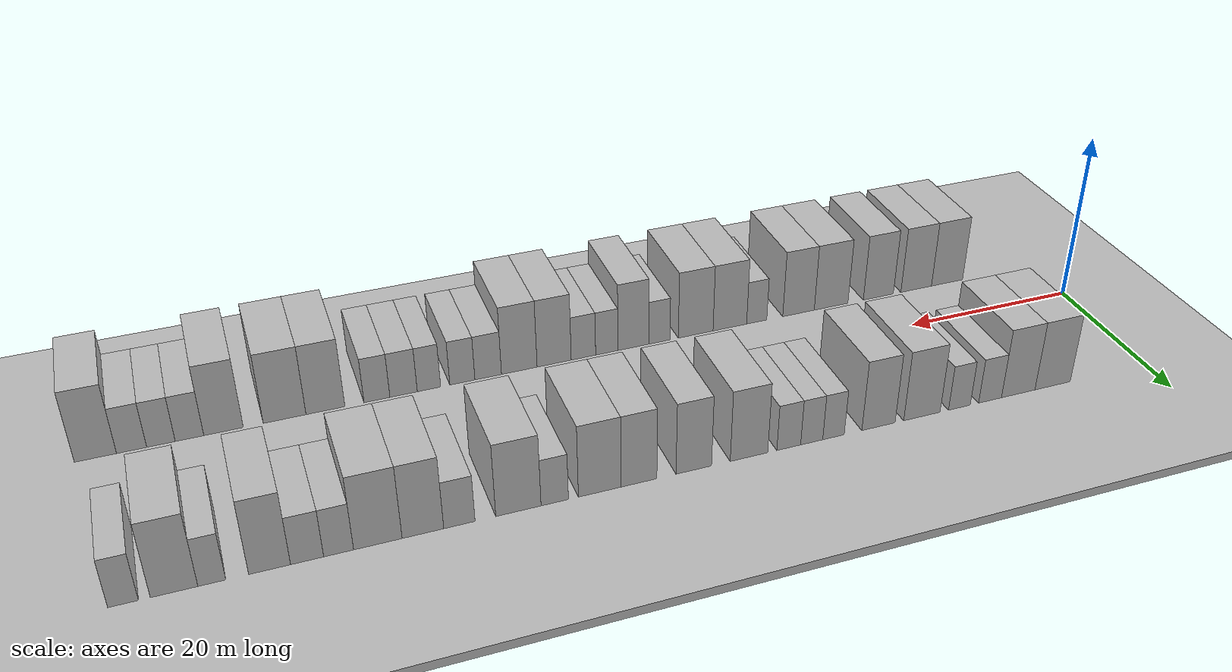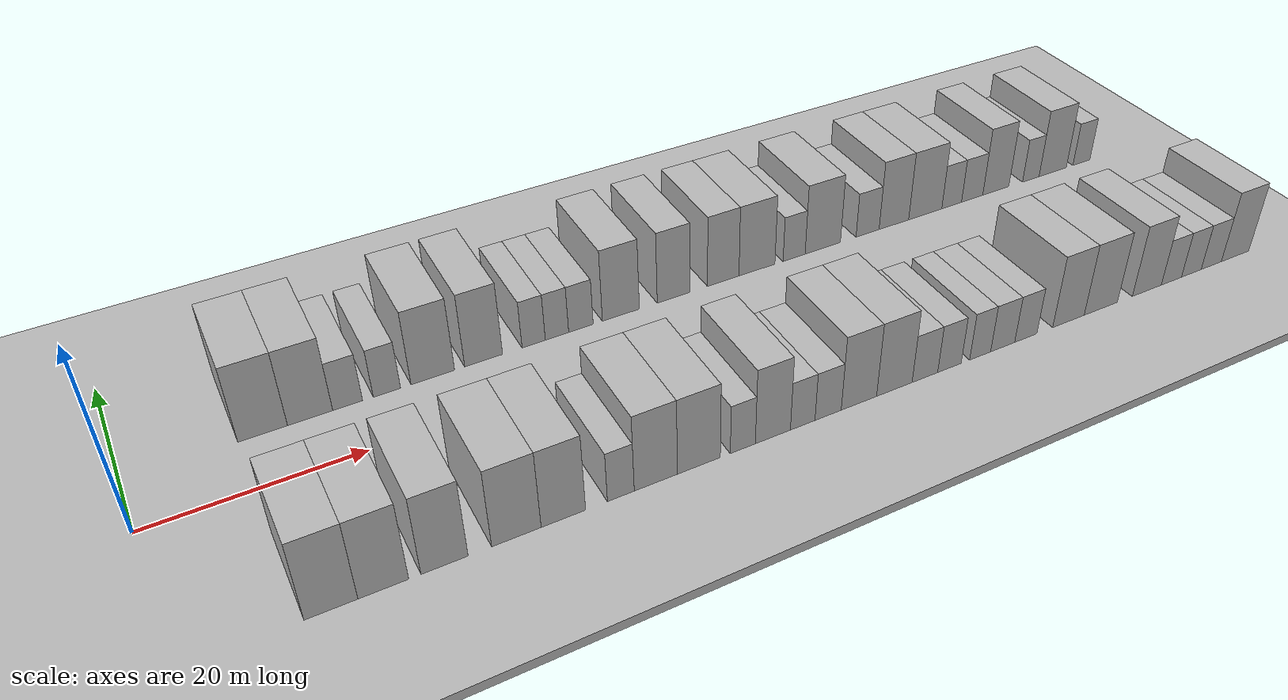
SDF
<sdf version="1.6">
 <world name="default">
  <include><name>ground_plane_1</name><uri>model://HANNAS_ground_plane</uri></include>
  <include>
   <name>ground_plane_2</name>
   <uri>model://HANNAS_ground_plane</uri>
   <pose>100 0 0  0 0 0</pose>
  </include>
  <model name="building_1">
   <static>1</static>
   <pose>12.1950 11.0000 0 0.000000 0.000000 1.570796</pose>
   <link name="link">
    <pose>0 0 4.50 0 0 0</pose>
    <collision name="collision"><geometry><box><size>10.0000 4.3899 9.0000</size></box></geometry></collision>
    <visual name="visual">
     <cast_shadows>0</cast_shadows>
     <geometry><box><size>10.0000 4.3899 9.0000</size></box></geometry>
     <material>
      <script>
       <uri>model://HANNAS_wall/materials/scripts</uri>
       <uri>model://HANNAS_wall/materials/textures</uri>
       <name>vrc/HANNAS_wall</name>
      </script>
     </material>
    </visual>
   </link>
  </model>
  <model name="building_2">
   <static>1</static>
   <pose>16.4373 11.0000 0 0.000000 0.000000 1.570796</pose>
   <link name="link">
    <pose>0 0 4.50 0 0 0</pose>
    <collision name="collision"><geometry><box><size>10.0000 4.0949 9.0000</size></box></geometry></collision>
    <visual name="visual">
     <cast_shadows>0</cast_shadows>
     <geometry><box><size>10.0000 4.0949 9.0000</size></box></geometry>
     <material>
      <script>
       <uri>model://HANNAS_wall/materials/scripts</uri>
       <uri>model://HANNAS_wall/materials/textures</uri>
       <name>vrc/HANNAS_wall</name>
      </script>
     </material>
    </visual>
   </link>
  </model>
  <model name="building_3">
   <static>1</static>
   <pose>19.8661 11.0000 0 0.000000 0.000000 1.570796</pose>
   <link name="link">
    <pose>0 0 3.00 0 0 0</pose>
    <collision name="collision"><geometry><box><size>10.0000 2.7627 6.0000</size></box></geometry></collision>
    <visual name="visual">
     <cast_shadows>0</cast_shadows>
     <geometry><box><size>10.0000 2.7627 6.0000</size></box></geometry>
     <material>
      <script>
       <uri>model://HANNAS_wall/materials/scripts</uri>
       <uri>model://HANNAS_wall/materials/textures</uri>
       <name>vrc/HANNAS_wall</name>
      </script>
     </material>
    </visual>
   </link>
  </model>
  <model name="building_4">
   <static>1</static>
   <pose>23.5412 11.0000 0 0.000000 0.000000 1.570796</pose>
   <link name="link">
    <pose>0 0 3.00 0 0 0</pose>
    <collision name="collision"><geometry><box><size>10.0000 2.5876 6.0000</size></box></geometry></collision>
    <visual name="visual">
     <cast_shadows>0</cast_shadows>
     <geometry><box><size>10.0000 2.5876 6.0000</size></box></geometry>
     <material>
      <script>
       <uri>model://HANNAS_wall/materials/scripts</uri>
       <uri>model://HANNAS_wall/materials/textures</uri>
       <name>vrc/HANNAS_wall</name>
      </script>
     </material>
    </visual>
   </link>
  </model>
  <model name="building_5">
   <static>1</static>
   <pose>27.9622 11.0000 0 0.000000 0.000000 1.570796</pose>
   <link name="link">
    <pose>0 0 4.50 0 0 0</pose>
    <collision name="collision"><geometry><box><size>10.0000 4.2543 9.0000</size></box></geometry></collision>
    <visual name="visual">
     <cast_shadows>0</cast_shadows>
     <geometry><box><size>10.0000 4.2543 9.0000</size></box></geometry>
     <material>
      <script>
       <uri>model://HANNAS_wall/materials/scripts</uri>
       <uri>model://HANNAS_wall/materials/textures</uri>
       <name>vrc/HANNAS_wall</name>
      </script>
     </material>
    </visual>
   </link>
  </model>
  <model name="building_6">
   <static>1</static>
   <pose>32.9959 11.0000 0 0.000000 0.000000 1.570796</pose>
   <link name="link">
    <pose>0 0 4.50 0 0 0</pose>
    <collision name="collision"><geometry><box><size>10.0000 3.8131 9.0000</size></box></geometry></collision>
    <visual name="visual">
     <cast_shadows>0</cast_shadows>
     <geometry><box><size>10.0000 3.8131 9.0000</size></box></geometry>
     <material>
      <script>
       <uri>model://HANNAS_wall/materials/scripts</uri>
       <uri>model://HANNAS_wall/materials/textures</uri>
       <name>vrc/HANNAS_wall</name>
      </script>
     </material>
    </visual>
   </link>
  </model>
  <model name="building_7">
   <static>1</static>
   <pose>38.1101 11.0000 0 0.000000 0.000000 1.570796</pose>
   <link name="link">
    <pose>0 0 3.00 0 0 0</pose>
    <collision name="collision"><geometry><box><size>10.0000 2.4154 6.0000</size></box></geometry></collision>
    <visual name="visual">
     <cast_shadows>0</cast_shadows>
     <geometry><box><size>10.0000 2.4154 6.0000</size></box></geometry>
     <material>
      <script>
       <uri>model://HANNAS_wall/materials/scripts</uri>
       <uri>model://HANNAS_wall/materials/textures</uri>
       <name>vrc/HANNAS_wall</name>
      </script>
     </material>
    </visual>
   </link>
  </model>
  <model name="building_8">
   <static>1</static>
   <pose>40.5467 11.0000 0 0.000000 0.000000 1.570796</pose>
   <link name="link">
    <pose>0 0 3.00 0 0 0</pose>
    <collision name="collision"><geometry><box><size>10.0000 2.4577 6.0000</size></box></geometry></collision>
    <visual name="visual">
     <cast_shadows>0</cast_shadows>
     <geometry><box><size>10.0000 2.4577 6.0000</size></box></geometry>
     <material>
      <script>
       <uri>model://HANNAS_wall/materials/scripts</uri>
       <uri>model://HANNAS_wall/materials/textures</uri>
       <name>vrc/HANNAS_wall</name>
      </script>
     </material>
    </visual>
   </link>
  </model>
  <model name="building_9">
   <static>1</static>
   <pose>43.0879 11.0000 0 0.000000 0.000000 1.570796</pose>
   <link name="link">
    <pose>0 0 3.00 0 0 0</pose>
    <collision name="collision"><geometry><box><size>10.0000 2.6247 6.0000</size></box></geometry></collision>
    <visual name="visual">
     <cast_shadows>0</cast_shadows>
     <geometry><box><size>10.0000 2.6247 6.0000</size></box></geometry>
     <material>
      <script>
       <uri>model://HANNAS_wall/materials/scripts</uri>
       <uri>model://HANNAS_wall/materials/textures</uri>
       <name>vrc/HANNAS_wall</name>
      </script>
     </material>
    </visual>
   </link>
  </model>
  <model name="building_10">
   <static>1</static>
   <pose>47.4309 11.0000 0 0.000000 0.000000 1.570796</pose>
   <link name="link">
    <pose>0 0 4.50 0 0 0</pose>
    <collision name="collision"><geometry><box><size>10.0000 4.0614 9.0000</size></box></geometry></collision>
    <visual name="visual">
     <cast_shadows>0</cast_shadows>
     <geometry><box><size>10.0000 4.0614 9.0000</size></box></geometry>
     <material>
      <script>
       <uri>model://HANNAS_wall/materials/scripts</uri>
       <uri>model://HANNAS_wall/materials/textures</uri>
       <name>vrc/HANNAS_wall</name>
      </script>
     </material>
    </visual>
   </link>
  </model>
  <model name="building_11">
   <static>1</static>
   <pose>53.3396 11.0000 0 0.000000 0.000000 1.570796</pose>
   <link name="link">
    <pose>0 0 4.50 0 0 0</pose>
    <collision name="collision"><geometry><box><size>10.0000 3.7560 9.0000</size></box></geometry></collision>
    <visual name="visual">
     <cast_shadows>0</cast_shadows>
     <geometry><box><size>10.0000 3.7560 9.0000</size></box></geometry>
     <material>
      <script>
       <uri>model://HANNAS_wall/materials/scripts</uri>
       <uri>model://HANNAS_wall/materials/textures</uri>
       <name>vrc/HANNAS_wall</name>
      </script>
     </material>
    </visual>
   </link>
  </model>
  <model name="building_12">
   <static>1</static>
   <pose>59.0669 11.0000 0 0.000000 0.000000 1.570796</pose>
   <link name="link">
    <pose>0 0 4.50 0 0 0</pose>
    <collision name="collision"><geometry><box><size>10.0000 3.6986 9.0000</size></box></geometry></collision>
    <visual name="visual">
     <cast_shadows>0</cast_shadows>
     <geometry><box><size>10.0000 3.6986 9.0000</size></box></geometry>
     <material>
      <script>
       <uri>model://HANNAS_wall/materials/scripts</uri>
       <uri>model://HANNAS_wall/materials/textures</uri>
       <name>vrc/HANNAS_wall</name>
      </script>
     </material>
    </visual>
   </link>
  </model>
  <model name="building_13">
   <static>1</static>
   <pose>63.0812 11.0000 0 0.000000 0.000000 1.570796</pose>
   <link name="link">
    <pose>0 0 4.50 0 0 0</pose>
    <collision name="collision"><geometry><box><size>10.0000 4.3301 9.0000</size></box></geometry></collision>
    <visual name="visual">
     <cast_shadows>0</cast_shadows>
     <geometry><box><size>10.0000 4.3301 9.0000</size></box></geometry>
     <material>
      <script>
       <uri>model://HANNAS_wall/materials/scripts</uri>
       <uri>model://HANNAS_wall/materials/textures</uri>
       <name>vrc/HANNAS_wall</name>
      </script>
     </material>
    </visual>
   </link>
  </model>
  <model name="building_14">
   <static>1</static>
   <pose>67.6097 11.0000 0 0.000000 0.000000 1.570796</pose>
   <link name="link">
    <pose>0 0 3.00 0 0 0</pose>
    <collision name="collision"><geometry><box><size>10.0000 2.7268 6.0000</size></box></geometry></collision>
    <visual name="visual">
     <cast_shadows>0</cast_shadows>
     <geometry><box><size>10.0000 2.7268 6.0000</size></box></geometry>
     <material>
      <script>
       <uri>model://HANNAS_wall/materials/scripts</uri>
       <uri>model://HANNAS_wall/materials/textures</uri>
       <name>vrc/HANNAS_wall</name>
      </script>
     </material>
    </visual>
   </link>
  </model>
  <model name="building_15">
   <static>1</static>
   <pose>71.1971 11.0000 0 0.000000 0.000000 1.570796</pose>
   <link name="link">
    <pose>0 0 4.50 0 0 0</pose>
    <collision name="collision"><geometry><box><size>10.0000 4.4480 9.0000</size></box></geometry></collision>
    <visual name="visual">
     <cast_shadows>0</cast_shadows>
     <geometry><box><size>10.0000 4.4480 9.0000</size></box></geometry>
     <material>
      <script>
       <uri>model://HANNAS_wall/materials/scripts</uri>
       <uri>model://HANNAS_wall/materials/textures</uri>
       <name>vrc/HANNAS_wall</name>
      </script>
     </material>
    </visual>
   </link>
  </model>
  <model name="building_16">
   <static>1</static>
   <pose>76.9208 11.0000 0 0.000000 0.000000 1.570796</pose>
   <link name="link">
    <pose>0 0 3.00 0 0 0</pose>
    <collision name="collision"><geometry><box><size>10.0000 2.9993 6.0000</size></box></geometry></collision>
    <visual name="visual">
     <cast_shadows>0</cast_shadows>
     <geometry><box><size>10.0000 2.9993 6.0000</size></box></geometry>
     <material>
      <script>
       <uri>model://HANNAS_wall/materials/scripts</uri>
       <uri>model://HANNAS_wall/materials/textures</uri>
       <name>vrc/HANNAS_wall</name>
      </script>
     </material>
    </visual>
   </link>
  </model>
  <model name="building_17">
   <static>1</static>
   <pose>80.3822 11.0000 0 0.000000 0.000000 1.570796</pose>
   <link name="link">
    <pose>0 0 4.50 0 0 0</pose>
    <collision name="collision"><geometry><box><size>10.0000 3.9234 9.0000</size></box></geometry></collision>
    <visual name="visual">
     <cast_shadows>0</cast_shadows>
     <geometry><box><size>10.0000 3.9234 9.0000</size></box></geometry>
     <material>
      <script>
       <uri>model://HANNAS_wall/materials/scripts</uri>
       <uri>model://HANNAS_wall/materials/textures</uri>
       <name>vrc/HANNAS_wall</name>
      </script>
     </material>
    </visual>
   </link>
  </model>
  <model name="building_18">
   <static>1</static>
   <pose>84.5905 11.0000 0 0.000000 0.000000 1.570796</pose>
   <link name="link">
    <pose>0 0 4.50 0 0 0</pose>
    <collision name="collision"><geometry><box><size>10.0000 4.4931 9.0000</size></box></geometry></collision>
    <visual name="visual">
     <cast_shadows>0</cast_shadows>
     <geometry><box><size>10.0000 4.4931 9.0000</size></box></geometry>
     <material>
      <script>
       <uri>model://HANNAS_wall/materials/scripts</uri>
       <uri>model://HANNAS_wall/materials/textures</uri>
       <name>vrc/HANNAS_wall</name>
      </script>
     </material>
    </visual>
   </link>
  </model>
  <model name="building_19">
   <static>1</static>
   <pose>88.2028 11.0000 0 0.000000 0.000000 1.570796</pose>
   <link name="link">
    <pose>0 0 3.00 0 0 0</pose>
    <collision name="collision"><geometry><box><size>10.0000 2.7315 6.0000</size></box></geometry></collision>
    <visual name="visual">
     <cast_shadows>0</cast_shadows>
     <geometry><box><size>10.0000 2.7315 6.0000</size></box></geometry>
     <material>
      <script>
       <uri>model://HANNAS_wall/materials/scripts</uri>
       <uri>model://HANNAS_wall/materials/textures</uri>
       <name>vrc/HANNAS_wall</name>
      </script>
     </material>
    </visual>
   </link>
  </model>
  <model name="building_20">
   <static>1</static>
   <pose>91.0572 11.0000 0 0.000000 0.000000 1.570796</pose>
   <link name="link">
    <pose>0 0 3.00 0 0 0</pose>
    <collision name="collision"><geometry><box><size>10.0000 2.9773 6.0000</size></box></geometry></collision>
    <visual name="visual">
     <cast_shadows>0</cast_shadows>
     <geometry><box><size>10.0000 2.9773 6.0000</size></box></geometry>
     <material>
      <script>
       <uri>model://HANNAS_wall/materials/scripts</uri>
       <uri>model://HANNAS_wall/materials/textures</uri>
       <name>vrc/HANNAS_wall</name>
      </script>
     </material>
    </visual>
   </link>
  </model>
  <model name="building_21">
   <static>1</static>
   <pose>94.4066 11.0000 0 0.000000 0.000000 1.570796</pose>
   <link name="link">
    <pose>0 0 4.50 0 0 0</pose>
    <collision name="collision"><geometry><box><size>10.0000 3.7216 9.0000</size></box></geometry></collision>
    <visual name="visual">
     <cast_shadows>0</cast_shadows>
     <geometry><box><size>10.0000 3.7216 9.0000</size></box></geometry>
     <material>
      <script>
       <uri>model://HANNAS_wall/materials/scripts</uri>
       <uri>model://HANNAS_wall/materials/textures</uri>
       <name>vrc/HANNAS_wall</name>
      </script>
     </material>
    </visual>
   </link>
  </model>
  <model name="building_22">
   <static>1</static>
   <pose>99.4775 11.0000 0 0.000000 0.000000 1.570796</pose>
   <link name="link">
    <pose>0 0 3.00 0 0 0</pose>
    <collision name="collision"><geometry><box><size>10.0000 2.4202 6.0000</size></box></geometry></collision>
    <visual name="visual">
     <cast_shadows>0</cast_shadows>
     <geometry><box><size>10.0000 2.4202 6.0000</size></box></geometry>
     <material>
      <script>
       <uri>model://HANNAS_wall/materials/scripts</uri>
       <uri>model://HANNAS_wall/materials/textures</uri>
       <name>vrc/HANNAS_wall</name>
      </script>
     </material>
    </visual>
   </link>
  </model>
  <model name="building_23">
   <static>1</static>
   <pose>102.7221 11.0000 0 0.000000 0.000000 1.570796</pose>
   <link name="link">
    <pose>0 0 4.50 0 0 0</pose>
    <collision name="collision"><geometry><box><size>10.0000 4.0689 9.0000</size></box></geometry></collision>
    <visual name="visual">
     <cast_shadows>0</cast_shadows>
     <geometry><box><size>10.0000 4.0689 9.0000</size></box></geometry>
     <material>
      <script>
       <uri>model://HANNAS_wall/materials/scripts</uri>
       <uri>model://HANNAS_wall/materials/textures</uri>
       <name>vrc/HANNAS_wall</name>
      </script>
     </material>
    </visual>
   </link>
  </model>
  <model name="building_24">
   <static>1</static>
   <pose>107.0462 11.0000 0 0.000000 0.000000 1.570796</pose>
   <link name="link">
    <pose>0 0 3.00 0 0 0</pose>
    <collision name="collision"><geometry><box><size>10.0000 2.5793 6.0000</size></box></geometry></collision>
    <visual name="visual">
     <cast_shadows>0</cast_shadows>
     <geometry><box><size>10.0000 2.5793 6.0000</size></box></geometry>
     <material>
      <script>
       <uri>model://HANNAS_wall/materials/scripts</uri>
       <uri>model://HANNAS_wall/materials/textures</uri>
       <name>vrc/HANNAS_wall</name>
      </script>
     </material>
    </visual>
   </link>
  </model>
  <model name="building_50">
   <static>1</static>
   <pose>12.1024 -11.0000 0 0.000000 0.000000 1.570796</pose>
   <link name="link">
    <pose>0 0 4.50 0 0 0</pose>
    <collision name="collision"><geometry><box><size>10.0000 4.2049 9.0000</size></box></geometry></collision>
    <visual name="visual">
     <cast_shadows>0</cast_shadows>
     <geometry><box><size>10.0000 4.2049 9.0000</size></box></geometry>
     <material>
      <script>
       <uri>model://HANNAS_wall/materials/scripts</uri>
       <uri>model://HANNAS_wall/materials/textures</uri>
       <name>vrc/HANNAS_wall</name>
      </script>
     </material>
    </visual>
   </link>
  </model>
  <model name="building_51">
   <static>1</static>
   <pose>16.2415 -11.0000 0 0.000000 0.000000 1.570796</pose>
   <link name="link">
    <pose>0 0 4.50 0 0 0</pose>
    <collision name="collision"><geometry><box><size>10.0000 4.0732 9.0000</size></box></geometry></collision>
    <visual name="visual">
     <cast_shadows>0</cast_shadows>
     <geometry><box><size>10.0000 4.0732 9.0000</size></box></geometry>
     <material>
      <script>
       <uri>model://HANNAS_wall/materials/scripts</uri>
       <uri>model://HANNAS_wall/materials/textures</uri>
       <name>vrc/HANNAS_wall</name>
      </script>
     </material>
    </visual>
   </link>
  </model>
  <model name="building_52">
   <static>1</static>
   <pose>21.2450 -11.0000 0 0.000000 0.000000 1.570796</pose>
   <link name="link">
    <pose>0 0 4.50 0 0 0</pose>
    <collision name="collision"><geometry><box><size>10.0000 3.9338 9.0000</size></box></geometry></collision>
    <visual name="visual">
     <cast_shadows>0</cast_shadows>
     <geometry><box><size>10.0000 3.9338 9.0000</size></box></geometry>
     <material>
      <script>
       <uri>model://HANNAS_wall/materials/scripts</uri>
       <uri>model://HANNAS_wall/materials/textures</uri>
       <name>vrc/HANNAS_wall</name>
      </script>
     </material>
    </visual>
   </link>
  </model>
  <model name="building_53">
   <static>1</static>
   <pose>27.3700 -11.0000 0 0.000000 0.000000 1.570796</pose>
   <link name="link">
    <pose>0 0 4.50 0 0 0</pose>
    <collision name="collision"><geometry><box><size>10.0000 4.3161 9.0000</size></box></geometry></collision>
    <visual name="visual">
     <cast_shadows>0</cast_shadows>
     <geometry><box><size>10.0000 4.3161 9.0000</size></box></geometry>
     <material>
      <script>
       <uri>model://HANNAS_wall/materials/scripts</uri>
       <uri>model://HANNAS_wall/materials/textures</uri>
       <name>vrc/HANNAS_wall</name>
      </script>
     </material>
    </visual>
   </link>
  </model>
  <model name="building_54">
   <static>1</static>
   <pose>31.5227 -11.0000 0 0.000000 0.000000 1.570796</pose>
   <link name="link">
    <pose>0 0 4.50 0 0 0</pose>
    <collision name="collision"><geometry><box><size>10.0000 3.9894 9.0000</size></box></geometry></collision>
    <visual name="visual">
     <cast_shadows>0</cast_shadows>
     <geometry><box><size>10.0000 3.9894 9.0000</size></box></geometry>
     <material>
      <script>
       <uri>model://HANNAS_wall/materials/scripts</uri>
       <uri>model://HANNAS_wall/materials/textures</uri>
       <name>vrc/HANNAS_wall</name>
      </script>
     </material>
    </visual>
   </link>
  </model>
  <model name="building_55">
   <static>1</static>
   <pose>36.7684 -11.0000 0 0.000000 0.000000 1.570796</pose>
   <link name="link">
    <pose>0 0 3.00 0 0 0</pose>
    <collision name="collision"><geometry><box><size>10.0000 2.5021 6.0000</size></box></geometry></collision>
    <visual name="visual">
     <cast_shadows>0</cast_shadows>
     <geometry><box><size>10.0000 2.5021 6.0000</size></box></geometry>
     <material>
      <script>
       <uri>model://HANNAS_wall/materials/scripts</uri>
       <uri>model://HANNAS_wall/materials/textures</uri>
       <name>vrc/HANNAS_wall</name>
      </script>
     </material>
    </visual>
   </link>
  </model>
  <model name="building_56">
   <static>1</static>
   <pose>40.0801 -11.0000 0 0.000000 0.000000 1.570796</pose>
   <link name="link">
    <pose>0 0 4.50 0 0 0</pose>
    <collision name="collision"><geometry><box><size>10.0000 4.1213 9.0000</size></box></geometry></collision>
    <visual name="visual">
     <cast_shadows>0</cast_shadows>
     <geometry><box><size>10.0000 4.1213 9.0000</size></box></geometry>
     <material>
      <script>
       <uri>model://HANNAS_wall/materials/scripts</uri>
       <uri>model://HANNAS_wall/materials/textures</uri>
       <name>vrc/HANNAS_wall</name>
      </script>
     </material>
    </visual>
   </link>
  </model>
  <model name="building_57">
   <static>1</static>
   <pose>44.2422 -11.0000 0 0.000000 0.000000 1.570796</pose>
   <link name="link">
    <pose>0 0 4.50 0 0 0</pose>
    <collision name="collision"><geometry><box><size>10.0000 4.2028 9.0000</size></box></geometry></collision>
    <visual name="visual">
     <cast_shadows>0</cast_shadows>
     <geometry><box><size>10.0000 4.2028 9.0000</size></box></geometry>
     <material>
      <script>
       <uri>model://HANNAS_wall/materials/scripts</uri>
       <uri>model://HANNAS_wall/materials/textures</uri>
       <name>vrc/HANNAS_wall</name>
      </script>
     </material>
    </visual>
   </link>
  </model>
  <model name="building_58">
   <static>1</static>
   <pose>48.6068 -11.0000 0 0.000000 0.000000 1.570796</pose>
   <link name="link">
    <pose>0 0 3.00 0 0 0</pose>
    <collision name="collision"><geometry><box><size>10.0000 2.5265 6.0000</size></box></geometry></collision>
    <visual name="visual">
     <cast_shadows>0</cast_shadows>
     <geometry><box><size>10.0000 2.5265 6.0000</size></box></geometry>
     <material>
      <script>
       <uri>model://HANNAS_wall/materials/scripts</uri>
       <uri>model://HANNAS_wall/materials/textures</uri>
       <name>vrc/HANNAS_wall</name>
      </script>
     </material>
    </visual>
   </link>
  </model>
  <model name="building_59">
   <static>1</static>
   <pose>51.6801 -11.0000 0 0.000000 0.000000 1.570796</pose>
   <link name="link">
    <pose>0 0 4.50 0 0 0</pose>
    <collision name="collision"><geometry><box><size>10.0000 3.6200 9.0000</size></box></geometry></collision>
    <visual name="visual">
     <cast_shadows>0</cast_shadows>
     <geometry><box><size>10.0000 3.6200 9.0000</size></box></geometry>
     <material>
      <script>
       <uri>model://HANNAS_wall/materials/scripts</uri>
       <uri>model://HANNAS_wall/materials/textures</uri>
       <name>vrc/HANNAS_wall</name>
      </script>
     </material>
    </visual>
   </link>
  </model>
  <model name="building_60">
   <static>1</static>
   <pose>54.7861 -11.0000 0 0.000000 0.000000 1.570796</pose>
   <link name="link">
    <pose>0 0 3.00 0 0 0</pose>
    <collision name="collision"><geometry><box><size>10.0000 2.5920 6.0000</size></box></geometry></collision>
    <visual name="visual">
     <cast_shadows>0</cast_shadows>
     <geometry><box><size>10.0000 2.5920 6.0000</size></box></geometry>
     <material>
      <script>
       <uri>model://HANNAS_wall/materials/scripts</uri>
       <uri>model://HANNAS_wall/materials/textures</uri>
       <name>vrc/HANNAS_wall</name>
      </script>
     </material>
    </visual>
   </link>
  </model>
  <model name="building_61">
   <static>1</static>
   <pose>57.4887 -11.0000 0 0.000000 0.000000 1.570796</pose>
   <link name="link">
    <pose>0 0 3.00 0 0 0</pose>
    <collision name="collision"><geometry><box><size>10.0000 2.8131 6.0000</size></box></geometry></collision>
    <visual name="visual">
     <cast_shadows>0</cast_shadows>
     <geometry><box><size>10.0000 2.8131 6.0000</size></box></geometry>
     <material>
      <script>
       <uri>model://HANNAS_wall/materials/scripts</uri>
       <uri>model://HANNAS_wall/materials/textures</uri>
       <name>vrc/HANNAS_wall</name>
      </script>
     </material>
    </visual>
   </link>
  </model>
  <model name="building_62">
   <static>1</static>
   <pose>60.8366 -11.0000 0 0.000000 0.000000 1.570796</pose>
   <link name="link">
    <pose>0 0 4.50 0 0 0</pose>
    <collision name="collision"><geometry><box><size>10.0000 3.8828 9.0000</size></box></geometry></collision>
    <visual name="visual">
     <cast_shadows>0</cast_shadows>
     <geometry><box><size>10.0000 3.8828 9.0000</size></box></geometry>
     <material>
      <script>
       <uri>model://HANNAS_wall/materials/scripts</uri>
       <uri>model://HANNAS_wall/materials/textures</uri>
       <name>vrc/HANNAS_wall</name>
      </script>
     </material>
    </visual>
   </link>
  </model>
  <model name="building_63">
   <static>1</static>
   <pose>64.7748 -11.0000 0 0.000000 0.000000 1.570796</pose>
   <link name="link">
    <pose>0 0 4.50 0 0 0</pose>
    <collision name="collision"><geometry><box><size>10.0000 3.9937 9.0000</size></box></geometry></collision>
    <visual name="visual">
     <cast_shadows>0</cast_shadows>
     <geometry><box><size>10.0000 3.9937 9.0000</size></box></geometry>
     <material>
      <script>
       <uri>model://HANNAS_wall/materials/scripts</uri>
       <uri>model://HANNAS_wall/materials/textures</uri>
       <name>vrc/HANNAS_wall</name>
      </script>
     </material>
    </visual>
   </link>
  </model>
  <model name="building_64">
   <static>1</static>
   <pose>68.2429 -11.0000 0 0.000000 0.000000 1.570796</pose>
   <link name="link">
    <pose>0 0 3.00 0 0 0</pose>
    <collision name="collision"><geometry><box><size>10.0000 2.9424 6.0000</size></box></geometry></collision>
    <visual name="visual">
     <cast_shadows>0</cast_shadows>
     <geometry><box><size>10.0000 2.9424 6.0000</size></box></geometry>
     <material>
      <script>
       <uri>model://HANNAS_wall/materials/scripts</uri>
       <uri>model://HANNAS_wall/materials/textures</uri>
       <name>vrc/HANNAS_wall</name>
      </script>
     </material>
    </visual>
   </link>
  </model>
  <model name="building_65">
   <static>1</static>
   <pose>71.0863 -11.0000 0 0.000000 0.000000 1.570796</pose>
   <link name="link">
    <pose>0 0 3.00 0 0 0</pose>
    <collision name="collision"><geometry><box><size>10.0000 2.7446 6.0000</size></box></geometry></collision>
    <visual name="visual">
     <cast_shadows>0</cast_shadows>
     <geometry><box><size>10.0000 2.7446 6.0000</size></box></geometry>
     <material>
      <script>
       <uri>model://HANNAS_wall/materials/scripts</uri>
       <uri>model://HANNAS_wall/materials/textures</uri>
       <name>vrc/HANNAS_wall</name>
      </script>
     </material>
    </visual>
   </link>
  </model>
  <model name="building_66">
   <static>1</static>
   <pose>74.7200 -11.0000 0 0.000000 0.000000 1.570796</pose>
   <link name="link">
    <pose>0 0 3.00 0 0 0</pose>
    <collision name="collision"><geometry><box><size>10.0000 2.5227 6.0000</size></box></geometry></collision>
    <visual name="visual">
     <cast_shadows>0</cast_shadows>
     <geometry><box><size>10.0000 2.5227 6.0000</size></box></geometry>
     <material>
      <script>
       <uri>model://HANNAS_wall/materials/scripts</uri>
       <uri>model://HANNAS_wall/materials/textures</uri>
       <name>vrc/HANNAS_wall</name>
      </script>
     </material>
    </visual>
   </link>
  </model>
  <model name="building_67">
   <static>1</static>
   <pose>77.4470 -11.0000 0 0.000000 0.000000 1.570796</pose>
   <link name="link">
    <pose>0 0 3.00 0 0 0</pose>
    <collision name="collision"><geometry><box><size>10.0000 2.9314 6.0000</size></box></geometry></collision>
    <visual name="visual">
     <cast_shadows>0</cast_shadows>
     <geometry><box><size>10.0000 2.9314 6.0000</size></box></geometry>
     <material>
      <script>
       <uri>model://HANNAS_wall/materials/scripts</uri>
       <uri>model://HANNAS_wall/materials/textures</uri>
       <name>vrc/HANNAS_wall</name>
      </script>
     </material>
    </visual>
   </link>
  </model>
  <model name="building_68">
   <static>1</static>
   <pose>80.2831 -11.0000 0 0.000000 0.000000 1.570796</pose>
   <link name="link">
    <pose>0 0 3.00 0 0 0</pose>
    <collision name="collision"><geometry><box><size>10.0000 2.7408 6.0000</size></box></geometry></collision>
    <visual name="visual">
     <cast_shadows>0</cast_shadows>
     <geometry><box><size>10.0000 2.7408 6.0000</size></box></geometry>
     <material>
      <script>
       <uri>model://HANNAS_wall/materials/scripts</uri>
       <uri>model://HANNAS_wall/materials/textures</uri>
       <name>vrc/HANNAS_wall</name>
      </script>
     </material>
    </visual>
   </link>
  </model>
  <model name="building_69">
   <static>1</static>
   <pose>85.6678 -11.0000 0 0.000000 0.000000 1.570796</pose>
   <link name="link">
    <pose>0 0 4.50 0 0 0</pose>
    <collision name="collision"><geometry><box><size>10.0000 4.0284 9.0000</size></box></geometry></collision>
    <visual name="visual">
     <cast_shadows>0</cast_shadows>
     <geometry><box><size>10.0000 4.0284 9.0000</size></box></geometry>
     <material>
      <script>
       <uri>model://HANNAS_wall/materials/scripts</uri>
       <uri>model://HANNAS_wall/materials/textures</uri>
       <name>vrc/HANNAS_wall</name>
      </script>
     </material>
    </visual>
   </link>
  </model>
  <model name="building_70">
   <static>1</static>
   <pose>89.8660 -11.0000 0 0.000000 0.000000 1.570796</pose>
   <link name="link">
    <pose>0 0 4.50 0 0 0</pose>
    <collision name="collision"><geometry><box><size>10.0000 4.3682 9.0000</size></box></geometry></collision>
    <visual name="visual">
     <cast_shadows>0</cast_shadows>
     <geometry><box><size>10.0000 4.3682 9.0000</size></box></geometry>
     <material>
      <script>
       <uri>model://HANNAS_wall/materials/scripts</uri>
       <uri>model://HANNAS_wall/materials/textures</uri>
       <name>vrc/HANNAS_wall</name>
      </script>
     </material>
    </visual>
   </link>
  </model>
  <model name="building_71">
   <static>1</static>
   <pose>96.0175 -11.0000 0 0.000000 0.000000 1.570796</pose>
   <link name="link">
    <pose>0 0 4.50 0 0 0</pose>
    <collision name="collision"><geometry><box><size>10.0000 3.9347 9.0000</size></box></geometry></collision>
    <visual name="visual">
     <cast_shadows>0</cast_shadows>
     <geometry><box><size>10.0000 3.9347 9.0000</size></box></geometry>
     <material>
      <script>
       <uri>model://HANNAS_wall/materials/scripts</uri>
       <uri>model://HANNAS_wall/materials/textures</uri>
       <name>vrc/HANNAS_wall</name>
      </script>
     </material>
    </visual>
   </link>
  </model>
  <model name="building_72">
   <static>1</static>
   <pose>99.3851 -11.0000 0 0.000000 0.000000 1.570796</pose>
   <link name="link">
    <pose>0 0 3.00 0 0 0</pose>
    <collision name="collision"><geometry><box><size>10.0000 2.8004 6.0000</size></box></geometry></collision>
    <visual name="visual">
     <cast_shadows>0</cast_shadows>
     <geometry><box><size>10.0000 2.8004 6.0000</size></box></geometry>
     <material>
      <script>
       <uri>model://HANNAS_wall/materials/scripts</uri>
       <uri>model://HANNAS_wall/materials/textures</uri>
       <name>vrc/HANNAS_wall</name>
      </script>
     </material>
    </visual>
   </link>
  </model>
  <model name="building_73">
   <static>1</static>
   <pose>102.1738 -11.0000 0 0.000000 0.000000 1.570796</pose>
   <link name="link">
    <pose>0 0 3.00 0 0 0</pose>
    <collision name="collision"><geometry><box><size>10.0000 2.7771 6.0000</size></box></geometry></collision>
    <visual name="visual">
     <cast_shadows>0</cast_shadows>
     <geometry><box><size>10.0000 2.7771 6.0000</size></box></geometry>
     <material>
      <script>
       <uri>model://HANNAS_wall/materials/scripts</uri>
       <uri>model://HANNAS_wall/materials/textures</uri>
       <name>vrc/HANNAS_wall</name>
      </script>
     </material>
    </visual>
   </link>
  </model>
  <model name="building_74">
   <static>1</static>
   <pose>105.0086 -11.0000 0 0.000000 0.000000 1.570796</pose>
   <link name="link">
    <pose>0 0 3.00 0 0 0</pose>
    <collision name="collision"><geometry><box><size>10.0000 2.8923 6.0000</size></box></geometry></collision>
    <visual name="visual">
     <cast_shadows>0</cast_shadows>
     <geometry><box><size>10.0000 2.8923 6.0000</size></box></geometry>
     <material>
      <script>
       <uri>model://HANNAS_wall/materials/scripts</uri>
       <uri>model://HANNAS_wall/materials/textures</uri>
       <name>vrc/HANNAS_wall</name>
      </script>
     </material>
    </visual>
   </link>
  </model>
  <model name="building_75">
   <static>1</static>
   <pose>108.4555 -11.0000 0 0.000000 0.000000 1.570796</pose>
   <link name="link">
    <pose>0 0 4.50 0 0 0</pose>
    <collision name="collision"><geometry><box><size>10.0000 4.0017 9.0000</size></box></geometry></collision>
    <visual name="visual">
     <cast_shadows>0</cast_shadows>
     <geometry><box><size>10.0000 4.0017 9.0000</size></box></geometry>
     <material>
      <script>
       <uri>model://HANNAS_wall/materials/scripts</uri>
       <uri>model://HANNAS_wall/materials/textures</uri>
       <name>vrc/HANNAS_wall</name>
      </script>
     </material>
    </visual>
   </link>
  </model>
 </world>
</sdf>
